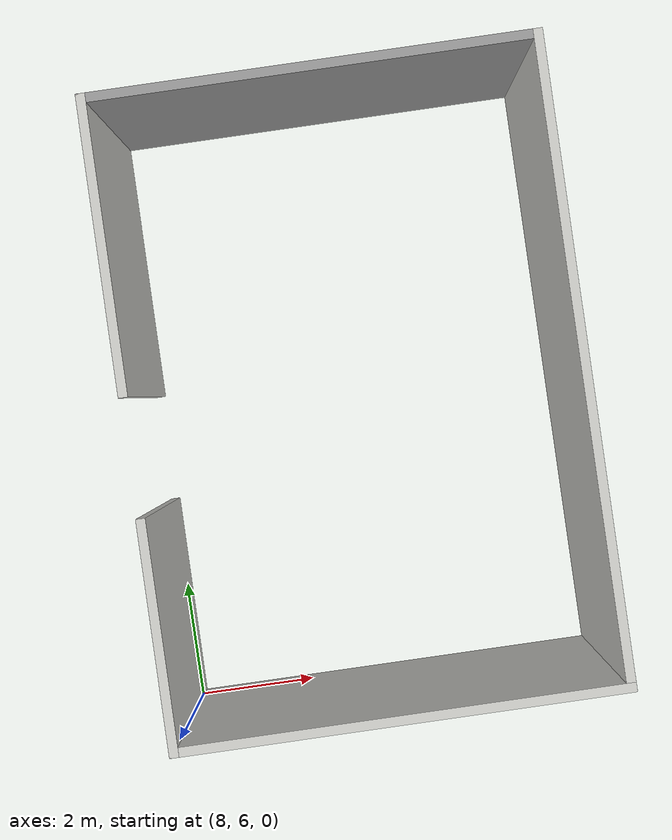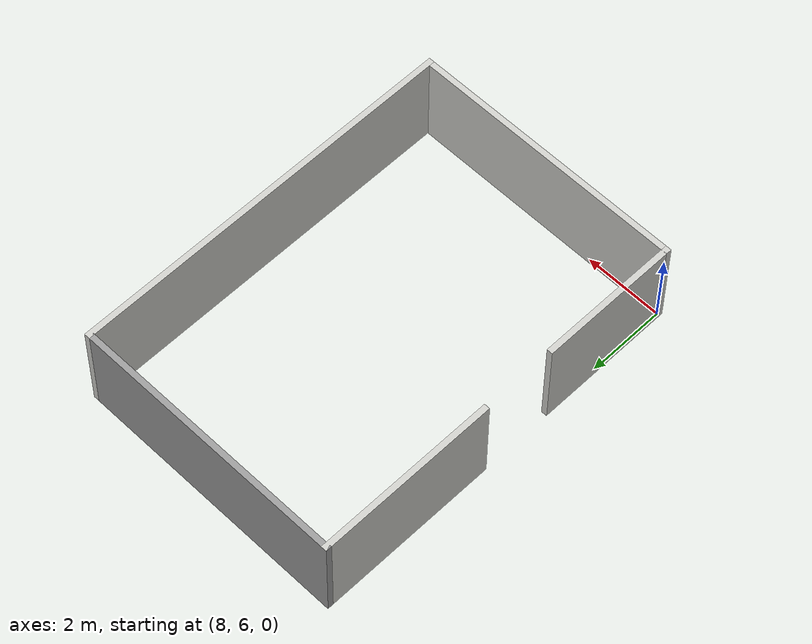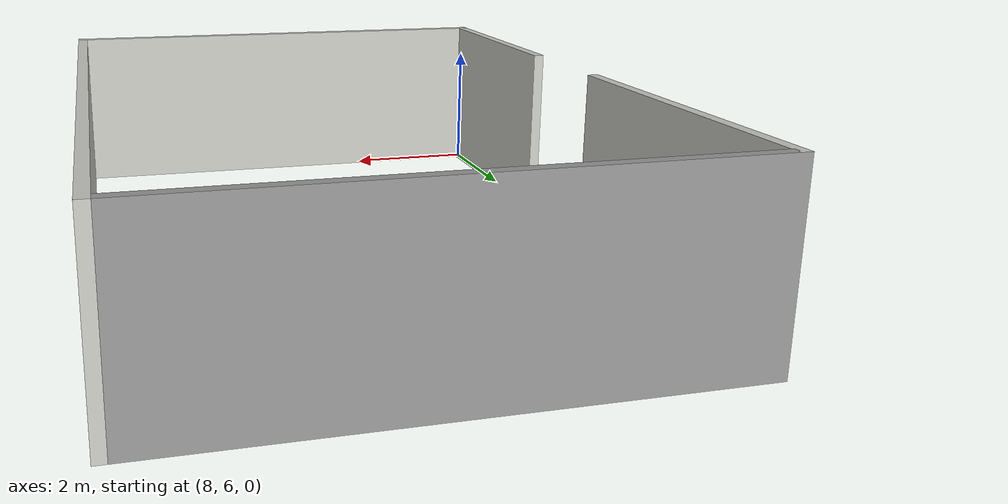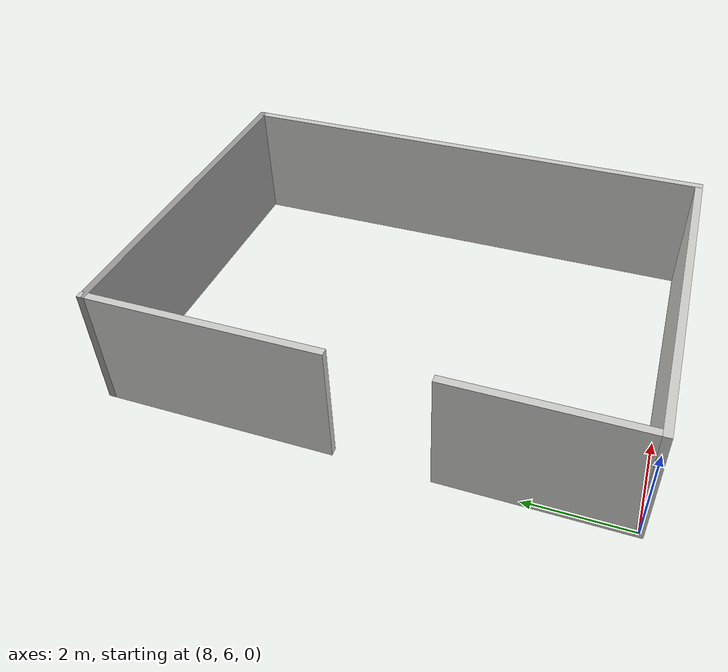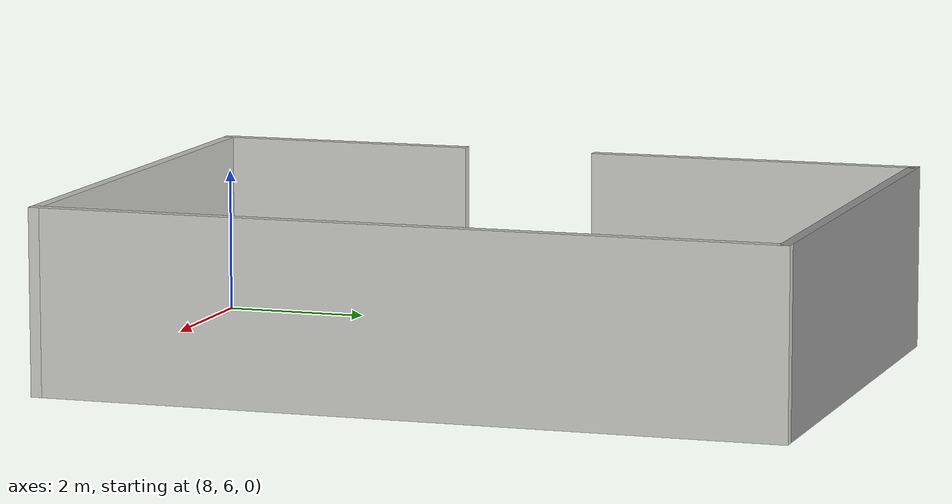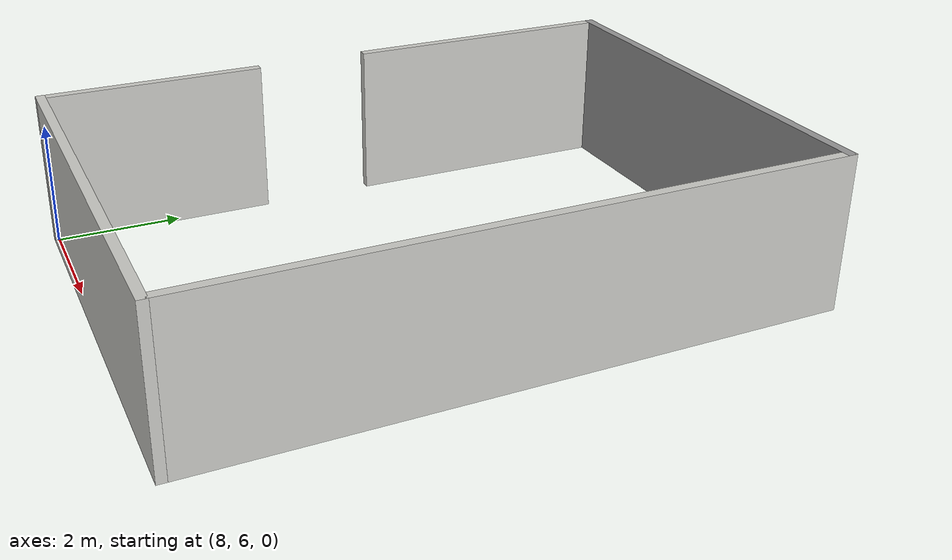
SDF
<?xml version='1.0'?>
<sdf version='1.7'>
  <model name='Room3'>
    <pose>7.5375 8.0375 0 0 -0 0</pose>
    <link name='Wall_0'>
      <collision name='Wall_0_Collision'>
        <geometry>
          <box>
            <size>10.15 0.15 2.5</size>
          </box>
        </geometry>
        <pose>0 0 1.25 0 -0 0</pose>
      </collision>
      <visual name='Wall_0_Visual'>
        <pose>0 0 1.25 0 -0 0</pose>
        <geometry>
          <box>
            <size>10.15 0.15 2.5</size>
          </box>
        </geometry>
        <material>
          <script>
            <uri>file://media/materials/scripts/gazebo.material</uri>
            <name>Gazebo/CeilingTiled</name>
          </script>
          <ambient>1 1 1 1</ambient>
        </material>
        <meta>
          <layer>0</layer>
        </meta>
      </visual>
      <pose>7.4625 2.9625 0 0 -0 -1.5708</pose>
    </link>
    <link name='Wall_2'>
      <collision name='Wall_2_Collision'>
        <geometry>
          <box>
            <size>7.15 0.15 2.5</size>
          </box>
        </geometry>
        <pose>0 0 1.25 0 -0 0</pose>
      </collision>
      <visual name='Wall_2_Visual'>
        <pose>0 0 1.25 0 -0 0</pose>
        <geometry>
          <box>
            <size>7.15 0.15 2.5</size>
          </box>
        </geometry>
        <material>
          <script>
            <uri>file://media/materials/scripts/gazebo.material</uri>
            <name>Gazebo/Grey</name>
          </script>
          <ambient>1 1 1 1</ambient>
        </material>
        <meta>
          <layer>0</layer>
        </meta>
      </visual>
      <pose>3.9625 7.9625 0 0 -0 3.14159</pose>
    </link>
    <link name='Wall_5'>
      <collision name='Wall_5_Collision'>
        <geometry>
          <box>
            <size>4.65 0.15 2.5</size>
          </box>
        </geometry>
        <pose>0 0 1.25 0 -0 0</pose>
      </collision>
      <visual name='Wall_5_Visual'>
        <pose>0 0 1.25 0 -0 0</pose>
        <geometry>
          <box>
            <size>4.65 0.15 2.5</size>
          </box>
        </geometry>
        <material>
          <script>
            <uri>file://media/materials/scripts/gazebo.material</uri>
            <name>Gazebo/CeilingTiled</name>
          </script>
          <ambient>1 1 1 1</ambient>
        </material>
        <meta>
          <layer>0</layer>
        </meta>
      </visual>
      <pose>0.4625 5.7125 0 0 -0 -1.5708</pose>
    </link>
    <link name='Wall_7'>
      <collision name='Wall_7_Collision'>
        <geometry>
          <box>
            <size>7.15 0.15 2.5</size>
          </box>
        </geometry>
        <pose>0 0 1.25 0 -0 0</pose>
      </collision>
      <visual name='Wall_7_Visual'>
        <pose>0 0 1.25 0 -0 0</pose>
        <geometry>
          <box>
            <size>7.15 0.15 2.5</size>
          </box>
        </geometry>
        <material>
          <script>
            <uri>file://media/materials/scripts/gazebo.material</uri>
            <name>Gazebo/CeilingTiled</name>
          </script>
          <ambient>1 1 1 1</ambient>
        </material>
        <meta>
          <layer>0</layer>
        </meta>
      </visual>
      <pose>3.9625 -2.0375 0 0 -0 3.14159</pose>
    </link>
    <link name='Wall_9'>
      <collision name='Wall_9_Collision'>
        <geometry>
          <box>
            <size>3.65 0.15 2.5</size>
          </box>
        </geometry>
        <pose>0 0 1.25 0 -0 0</pose>
      </collision>
      <visual name='Wall_9_Visual'>
        <pose>0 0 1.25 0 -0 0</pose>
        <geometry>
          <box>
            <size>3.65 0.15 2.5</size>
          </box>
        </geometry>
        <material>
          <script>
            <uri>file://media/materials/scripts/gazebo.material</uri>
            <name>Gazebo/CeilingTiled</name>
          </script>
          <ambient>1 1 1 1</ambient>
        </material>
        <meta>
          <layer>0</layer>
        </meta>
      </visual>
      <pose>0.4625 -0.2875 0 0 -0 1.5708</pose>
    </link>
    <static>1</static>
  </model>
</sdf>
